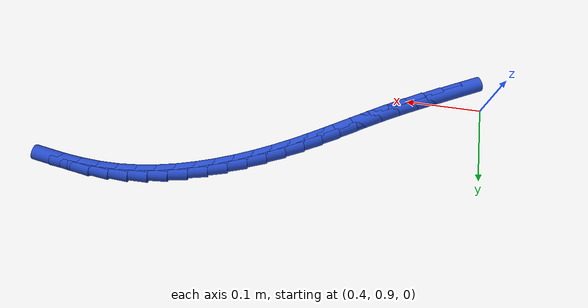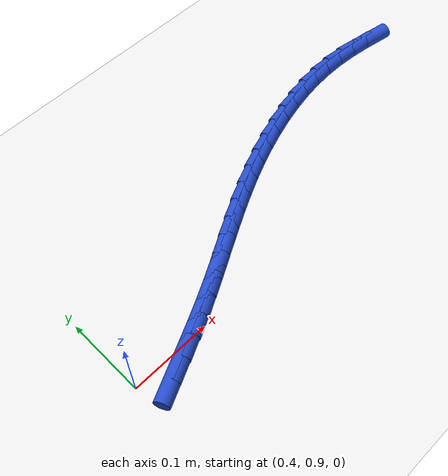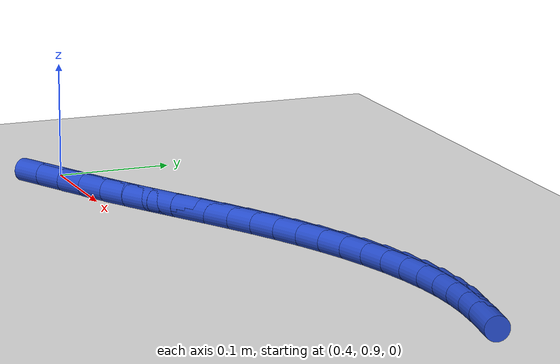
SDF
<sdf version="1.6">
 <world name="default">
  <model name="ground_plane">
   <static>1</static>
   <link name="link">
    <collision name="collision">
     <geometry><plane><normal>0 0 1</normal><size>100 100</size></plane></geometry>
     <surface><friction><ode><mu>100</mu><mu2>50</mu2></ode></friction></surface>
    </collision>
    <visual name="visual">
     <cast_shadows>0</cast_shadows>
     <geometry><plane><normal>0 0 1</normal><size>100 100</size></plane></geometry>
     <material>
      <script><uri>file://media/materials/scripts/gazebo.material</uri><name>Gazebo/WhiteGlow</name></script>
     </material>
    </visual>
   </link>
  </model>
  <model name="line">
   <link name="link_41">
    <pose>0.4412615584466781 0.8811134540236347 0.01 0 1.57 0.4402182625999187</pose>
    <collision name="collision">
     <geometry><cylinder><radius>0.01</radius><length>0.08</length></cylinder></geometry>
    </collision>
    <visual name="visual">
     <material>
      <script><name>Gazebo/Blue</name><uri>file://media/materials/scripts/gazebo.material</uri></script>
     </material>
     <geometry><cylinder><radius>0.01</radius><length>0.08</length></cylinder></geometry>
    </visual>
   </link>
   <link name="link_42">
    <pose>0.4659798536613352 0.8927569375696472 0.01 0 1.57 0.44442544236932796</pose>
    <collision name="collision">
     <geometry><cylinder><radius>0.01</radius><length>0.08</length></cylinder></geometry>
    </collision>
    <visual name="visual">
     <material>
      <script><name>Gazebo/Blue</name><uri>file://media/materials/scripts/gazebo.material</uri></script>
     </material>
     <geometry><cylinder><radius>0.01</radius><length>0.08</length></cylinder></geometry>
    </visual>
   </link>
   <link name="link_43">
    <pose>0.49043416929380373 0.9044020367471445 0.01 0 1.57 0.4600517057744478</pose>
    <collision name="collision">
     <geometry><cylinder><radius>0.01</radius><length>0.08</length></cylinder></geometry>
    </collision>
    <visual name="visual">
     <material>
      <script><name>Gazebo/Blue</name><uri>file://media/materials/scripts/gazebo.material</uri></script>
     </material>
     <geometry><cylinder><radius>0.01</radius><length>0.08</length></cylinder></geometry>
    </visual>
   </link>
   <link name="link_44">
    <pose>0.514301840376939 0.9162287820758385 0.01 0 1.57 0.48325954570123025</pose>
    <collision name="collision">
     <geometry><cylinder><radius>0.01</radius><length>0.08</length></cylinder></geometry>
    </collision>
    <visual name="visual">
     <material>
      <script><name>Gazebo/Blue</name><uri>file://media/materials/scripts/gazebo.material</uri></script>
     </material>
     <geometry><cylinder><radius>0.01</radius><length>0.08</length></cylinder></geometry>
    </visual>
   </link>
   <link name="link_45">
    <pose>0.5373878149170888 0.928343398856114 0.01 0 1.57 0.5007259656540738</pose>
    <collision name="collision">
     <geometry><cylinder><radius>0.01</radius><length>0.08</length></cylinder></geometry>
    </collision>
    <visual name="visual">
     <material>
      <script><name>Gazebo/Blue</name><uri>file://media/materials/scripts/gazebo.material</uri></script>
     </material>
     <geometry><cylinder><radius>0.01</radius><length>0.08</length></cylinder></geometry>
    </visual>
   </link>
   <link name="link_46">
    <pose>0.5598608825974675 0.940641683824343 0.01 0 1.57 0.5093921789110664</pose>
    <collision name="collision">
     <geometry><cylinder><radius>0.01</radius><length>0.08</length></cylinder></geometry>
    </collision>
    <visual name="visual">
     <material>
      <script><name>Gazebo/Blue</name><uri>file://media/materials/scripts/gazebo.material</uri></script>
     </material>
     <geometry><cylinder><radius>0.01</radius><length>0.08</length></cylinder></geometry>
    </visual>
   </link>
   <link name="link_47">
    <pose>0.5819542509646431 0.9529821775163453 0.01 0 1.57 0.5087867753595292</pose>
    <collision name="collision">
     <geometry><cylinder><radius>0.01</radius><length>0.08</length></cylinder></geometry>
    </collision>
    <visual name="visual">
     <material>
      <script><name>Gazebo/Blue</name><uri>file://media/materials/scripts/gazebo.material</uri></script>
     </material>
     <geometry><cylinder><radius>0.01</radius><length>0.08</length></cylinder></geometry>
    </visual>
   </link>
   <link name="link_48">
    <pose>0.6039011275651838 0.9652234204679407 0.01 0 1.57 0.49872423113759856</pose>
    <collision name="collision">
     <geometry><cylinder><radius>0.01</radius><length>0.08</length></cylinder></geometry>
    </collision>
    <visual name="visual">
     <material>
      <script><name>Gazebo/Blue</name><uri>file://media/materials/scripts/gazebo.material</uri></script>
     </material>
     <geometry><cylinder><radius>0.01</radius><length>0.08</length></cylinder></geometry>
    </visual>
   </link>
   <link name="link_49">
    <pose>0.6259347199456576 0.9772239532149499 0.01 0 1.57 0.47932682582244573</pose>
    <collision name="collision">
     <geometry><cylinder><radius>0.01</radius><length>0.08</length></cylinder></geometry>
    </collision>
    <visual name="visual">
     <material>
      <script><name>Gazebo/Blue</name><uri>file://media/materials/scripts/gazebo.material</uri></script>
     </material>
     <geometry><cylinder><radius>0.01</radius><length>0.08</length></cylinder></geometry>
    </visual>
   </link>
   <link name="link_50">
    <pose>0.6482882356526329 0.9888423162931926 0.01 0 1.57 0.4513516744903677</pose>
    <collision name="collision">
     <geometry><cylinder><radius>0.01</radius><length>0.08</length></cylinder></geometry>
    </collision>
    <visual name="visual">
     <material>
      <script><name>Gazebo/Blue</name><uri>file://media/materials/scripts/gazebo.material</uri></script>
     </material>
     <geometry><cylinder><radius>0.01</radius><length>0.08</length></cylinder></geometry>
    </visual>
   </link>
   <link name="link_51">
    <pose>0.6711771882753453 0.999937123408897 0.01 0 1.57 0.4184259051370871</pose>
    <collision name="collision">
     <geometry><cylinder><radius>0.01</radius><length>0.08</length></cylinder></geometry>
    </collision>
    <visual name="visual">
     <material>
      <script><name>Gazebo/Blue</name><uri>file://media/materials/scripts/gazebo.material</uri></script>
     </material>
     <geometry><cylinder><radius>0.01</radius><length>0.08</length></cylinder></geometry>
    </visual>
   </link>
   <link name="link_52">
    <pose>0.6946333528191165 1.0103677480885422 0.01 0 1.57 0.3822245574260171</pose>
    <collision name="collision">
     <geometry><cylinder><radius>0.01</radius><length>0.08</length></cylinder></geometry>
    </collision>
    <visual name="visual">
     <material>
      <script><name>Gazebo/Blue</name><uri>file://media/materials/scripts/gazebo.material</uri></script>
     </material>
     <geometry><cylinder><radius>0.01</radius><length>0.08</length></cylinder></geometry>
    </visual>
   </link>
   <link name="link_53">
    <pose>0.7185796181627329 1.0199940141390145 0.01 0 1.57 0.34238707417006126</pose>
    <collision name="collision">
     <geometry><cylinder><radius>0.01</radius><length>0.08</length></cylinder></geometry>
    </collision>
    <visual name="visual">
     <material>
      <script><name>Gazebo/Blue</name><uri>file://media/materials/scripts/gazebo.material</uri></script>
     </material>
     <geometry><cylinder><radius>0.01</radius><length>0.08</length></cylinder></geometry>
    </visual>
   </link>
   <link name="link_54">
    <pose>0.7429374467315265 1.0286757512660603 0.01 0 1.57 0.29849345570736374</pose>
    <collision name="collision">
     <geometry><cylinder><radius>0.01</radius><length>0.08</length></cylinder></geometry>
    </collision>
    <visual name="visual">
     <material>
      <script><name>Gazebo/Blue</name><uri>file://media/materials/scripts/gazebo.material</uri></script>
     </material>
     <geometry><cylinder><radius>0.01</radius><length>0.08</length></cylinder></geometry>
    </visual>
   </link>
   <link name="link_55">
    <pose>0.7676283009508278 1.0362727891754246 0.01 0 1.57 0.25009697159213545</pose>
    <collision name="collision">
     <geometry><cylinder><radius>0.01</radius><length>0.08</length></cylinder></geometry>
    </collision>
    <visual name="visual">
     <material>
      <script><name>Gazebo/Blue</name><uri>file://media/materials/scripts/gazebo.material</uri></script>
     </material>
     <geometry><cylinder><radius>0.01</radius><length>0.08</length></cylinder></geometry>
    </visual>
   </link>
   <link name="link_56">
    <pose>0.7925736432459684 1.042644957572854 0.01 0 1.57 0.19673981012162825</pose>
    <collision name="collision">
     <geometry><cylinder><radius>0.01</radius><length>0.08</length></cylinder></geometry>
    </collision>
    <visual name="visual">
     <material>
      <script><name>Gazebo/Blue</name><uri>file://media/materials/scripts/gazebo.material</uri></script>
     </material>
     <geometry><cylinder><radius>0.01</radius><length>0.08</length></cylinder></geometry>
    </visual>
   </link>
   <link name="link_57">
    <pose>0.8176949360422789 1.0476520861640937 0.01 0 1.57 0.13797958817576</pose>
    <collision name="collision">
     <geometry><cylinder><radius>0.01</radius><length>0.08</length></cylinder></geometry>
    </collision>
    <visual name="visual">
     <material>
      <script><name>Gazebo/Blue</name><uri>file://media/materials/scripts/gazebo.material</uri></script>
     </material>
     <geometry><cylinder><radius>0.01</radius><length>0.08</length></cylinder></geometry>
    </visual>
   </link>
   <link name="link_58">
    <pose>0.8429136417650919 1.0511540046548904 0.01 0 1.57 0.07343017851921717</pose>
    <collision name="collision">
     <geometry><cylinder><radius>0.01</radius><length>0.08</length></cylinder></geometry>
    </collision>
    <visual name="visual">
     <material>
      <script><name>Gazebo/Blue</name><uri>file://media/materials/scripts/gazebo.material</uri></script>
     </material>
     <geometry><cylinder><radius>0.01</radius><length>0.08</length></cylinder></geometry>
    </visual>
   </link>
   <link name="link_59">
    <pose>0.8681512228397378 1.0530105427509897 0.01 0 1.57 0.003230797942264831</pose>
    <collision name="collision">
     <geometry><cylinder><radius>0.01</radius><length>0.08</length></cylinder></geometry>
    </collision>
    <visual name="visual">
     <material>
      <script><name>Gazebo/Blue</name><uri>file://media/materials/scripts/gazebo.material</uri></script>
     </material>
     <geometry><cylinder><radius>0.01</radius><length>0.08</length></cylinder></geometry>
    </visual>
   </link>
   <link name="link_60">
    <pose>0.8933315366160098 1.0530918955399788 0.01 0 1.57 -0.06421343725821738</pose>
    <collision name="collision">
     <geometry><cylinder><radius>0.01</radius><length>0.08</length></cylinder></geometry>
    </collision>
    <visual name="visual">
     <material>
      <script><name>Gazebo/Blue</name><uri>file://media/materials/scripts/gazebo.material</uri></script>
     </material>
     <geometry><cylinder><radius>0.01</radius><length>0.08</length></cylinder></geometry>
    </visual>
   </link>
   <link name="link_61">
    <pose>0.9184269508565377 1.0514782141895638 0.01 0 1.57 -0.12060775232802468</pose>
    <collision name="collision">
     <geometry><cylinder><radius>0.01</radius><length>0.08</length></cylinder></geometry>
    </collision>
    <visual name="visual">
     <material>
      <script><name>Gazebo/Blue</name><uri>file://media/materials/scripts/gazebo.material</uri></script>
     </material>
     <geometry><cylinder><radius>0.01</radius><length>0.08</length></cylinder></geometry>
    </visual>
   </link>
   <link name="link_62">
    <pose>0.9434549508728732 1.048444921421802 0.01 0 1.57 -0.1654119747137355</pose>
    <collision name="collision">
     <geometry><cylinder><radius>0.01</radius><length>0.08</length></cylinder></geometry>
    </collision>
    <visual name="visual">
     <material>
      <script><name>Gazebo/Blue</name><uri>file://media/materials/scripts/gazebo.material</uri></script>
     </material>
     <geometry><cylinder><radius>0.01</radius><length>0.08</length></cylinder></geometry>
    </visual>
   </link>
  </model>
 </world>
</sdf>
